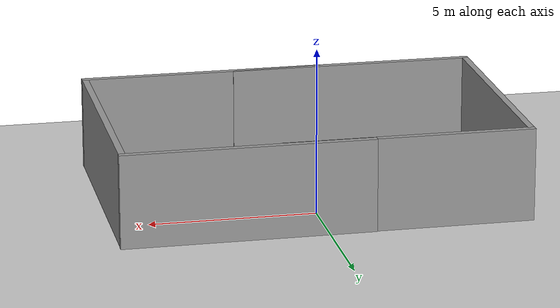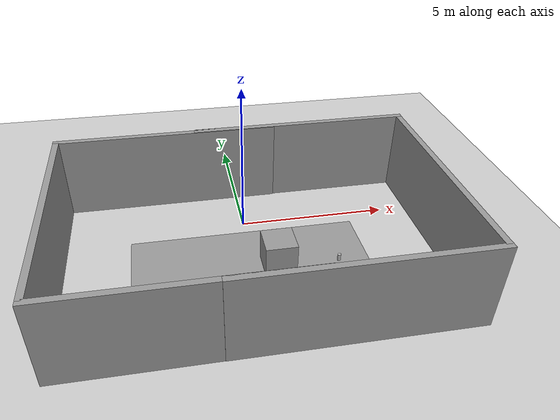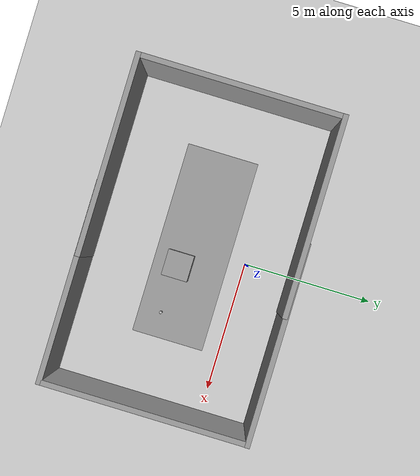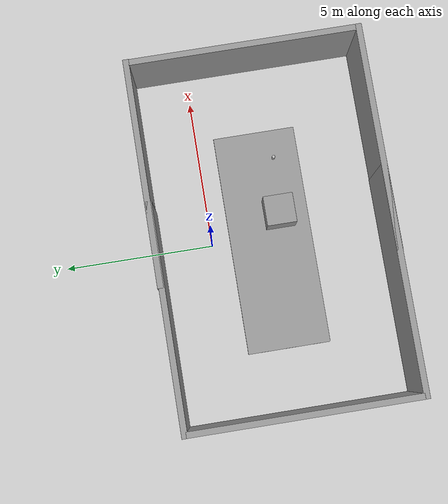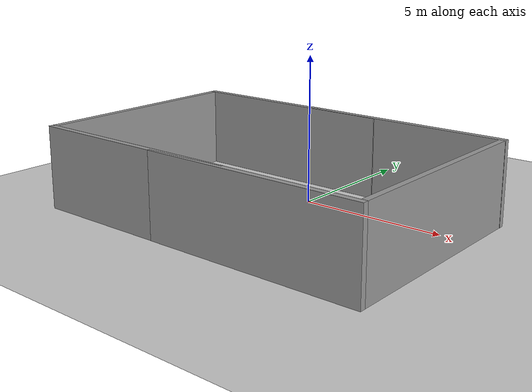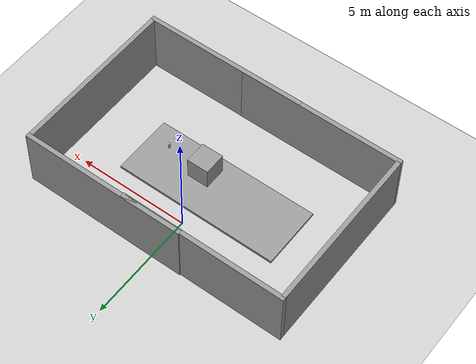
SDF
<sdf version="1.7">
 <world name="default">
  <light name="sun" type="directional">
   <pose>0 0 10 0 -0 0</pose>
   <diffuse>0.8 0.8 0.8 1</diffuse>
   <specular>0.2 0.2 0.2 1</specular>
   <attenuation>
    <range>1000</range>
    <constant>0.9</constant>
    <linear>0.01</linear>
    <quadratic>0.001</quadratic>
   </attenuation>
   <direction>-0.5 0.1 -0.9</direction>
   <spot><inner_angle>0</inner_angle><outer_angle>0</outer_angle><falloff>0</falloff></spot>
  </light>
  <model name="ground_plane">
   <static>1</static>
   <link name="link">
    <collision name="collision">
     <geometry><plane><normal>0 0 1</normal><size>100 100</size></plane></geometry>
     <surface><friction><ode><mu>100</mu><mu2>50</mu2></ode></friction></surface>
    </collision>
    <visual name="visual">
     <cast_shadows>0</cast_shadows>
     <geometry><plane><normal>0 0 1</normal><size>100 100</size></plane></geometry>
     <material>
      <script><uri>file://media/materials/scripts/gazebo.material</uri><name>Gazebo/Grey</name></script>
     </material>
    </visual>
   </link>
  </model>
  <gravity>0 0 -9.8</gravity>
  <magnetic_field>6e-06 2.3e-05 -4.2e-05</magnetic_field>
  <atmosphere type="adiabatic"/>
  <physics type="ode">
   <max_step_size>0.001</max_step_size>
   <real_time_factor>1</real_time_factor>
   <real_time_update_rate>1000</real_time_update_rate>
  </physics>
  <scene><ambient>0.4 0.4 0.4 1</ambient><background>0.7 0.7 0.7 1</background><shadows>1</shadows></scene>
  <spherical_coordinates>
   <surface_model>EARTH_WGS84</surface_model>
   <latitude_deg>0</latitude_deg>
   <longitude_deg>0</longitude_deg>
   <elevation>0</elevation>
   <heading_deg>0</heading_deg>
  </spherical_coordinates>
  <model name="grey_wall">
   <static>1</static>
   <link name="link">
    <pose>0 0 1.4 0 -0 0</pose>
    <collision name="collision"><geometry><box><size>7.5 0.2 2.8</size></box></geometry></collision>
    <visual name="visual">
     <cast_shadows>0</cast_shadows>
     <geometry><box><size>7.5 0.2 2.8</size></box></geometry>
     <material>
      <script>
       <uri>model://grey_wall/materials/scripts</uri>
       <uri>model://grey_wall/materials/textures</uri>
       <name>vrc/grey_wall</name>
      </script>
     </material>
    </visual>
   </link>
   <pose>-0.091714 -0.62023 5e-06 1.5708 -0 0</pose>
  </model>
  <model name="beer">
   <link name="link">
    <pose>0 0 0.115 0 -0 0</pose>
    <inertial>
     <mass>0.39</mass>
     <inertia><ixx>0.00058</ixx><ixy>0</ixy><ixz>0</ixz><iyy>0.00058</iyy><iyz>0</iyz><izz>0.00019</izz></inertia>
    </inertial>
    <collision name="collision">
     <geometry><cylinder><radius>0.055</radius><length>0.23</length></cylinder></geometry>
    </collision>
    <visual name="visual">
     <geometry><cylinder><radius>0.055</radius><length>0.23</length></cylinder></geometry>
     <material>
      <script>
       <uri>model://beer/materials/scripts</uri>
       <uri>model://beer/materials/textures</uri>
       <name>Beer/Diffuse</name>
      </script>
     </material>
    </visual>
   </link>
   <pose>2.68385 -2.56076 0.099999 9e-06 2.2e-05 -0.000943</pose>
  </model>
  <model name="unit_box">
   <pose>0.742353 -2.41636 0.59999 4e-06 -0 6e-06</pose>
   <link name="link">
    <inertial>
     <mass>1</mass>
     <inertia>
      <ixx>0.166667</ixx>
      <ixy>0</ixy>
      <ixz>0</ixz>
      <iyy>0.166667</iyy>
      <iyz>0</iyz>
      <izz>0.166667</izz>
     </inertia>
    </inertial>
    <collision name="collision"><geometry><box><size>1.00002 1 0.999983</size></box></geometry></collision>
    <visual name="visual">
     <geometry><box><size>1.00002 1 0.999983</size></box></geometry>
     <material>
      <script><name>Gazebo/Grey</name><uri>file://media/materials/scripts/gazebo.material</uri></script>
     </material>
    </visual>
   </link>
  </model>
  <model name="grey_wall_clone_clone">
   <static>1</static>
   <link name="link">
    <pose>0 0 1.4 0 -0 0</pose>
    <collision name="collision"><geometry><box><size>7.5 0.2 2.8</size></box></geometry></collision>
    <visual name="visual">
     <cast_shadows>0</cast_shadows>
     <geometry><box><size>7.5 0.2 2.8</size></box></geometry>
     <material>
      <script>
       <uri>model://grey_wall/materials/scripts</uri>
       <uri>model://grey_wall/materials/textures</uri>
       <name>vrc/grey_wall</name>
      </script>
     </material>
    </visual>
   </link>
   <pose>-2.35 -5.8 5e-06 0 -0 0</pose>
  </model>
  <model name="grey_wall_clone_clone_1">
   <static>1</static>
   <link name="link">
    <pose>0 0 1.4 0 -0 0</pose>
    <collision name="collision"><geometry><box><size>7.5 0.2 2.8</size></box></geometry></collision>
    <visual name="visual">
     <cast_shadows>0</cast_shadows>
     <geometry><box><size>7.5 0.2 2.8</size></box></geometry>
     <material>
      <script>
       <uri>model://grey_wall/materials/scripts</uri>
       <uri>model://grey_wall/materials/textures</uri>
       <name>vrc/grey_wall</name>
      </script>
     </material>
    </visual>
   </link>
   <pose>-2.35 1.8 5e-06 0 -0 0</pose>
  </model>
  <model name="grey_wall_clone_clone_2">
   <static>1</static>
   <link name="link">
    <pose>0 0 1.4 0 -0 0</pose>
    <collision name="collision"><geometry><box><size>7.5 0.2 2.8</size></box></geometry></collision>
    <visual name="visual">
     <cast_shadows>0</cast_shadows>
     <geometry><box><size>7.5 0.2 2.8</size></box></geometry>
     <material>
      <script>
       <uri>model://grey_wall/materials/scripts</uri>
       <uri>model://grey_wall/materials/textures</uri>
       <name>vrc/grey_wall</name>
      </script>
     </material>
    </visual>
   </link>
   <pose>-6 -2 5e-06 0 -0 1.57</pose>
  </model>
  <model name="grey_wall_clone_clone_2_clone">
   <static>1</static>
   <link name="link">
    <pose>0 0 1.4 0 -0 0</pose>
    <collision name="collision"><geometry><box><size>7.5 0.2 2.8</size></box></geometry></collision>
    <visual name="visual">
     <cast_shadows>0</cast_shadows>
     <geometry><box><size>7.5 0.2 2.8</size></box></geometry>
     <material>
      <script>
       <uri>model://grey_wall/materials/scripts</uri>
       <uri>model://grey_wall/materials/textures</uri>
       <name>vrc/grey_wall</name>
      </script>
     </material>
    </visual>
   </link>
   <pose>6 -2 5e-06 0 -0 1.57</pose>
  </model>
  <model name="grey_wall_clone_clone_1_clone">
   <static>1</static>
   <link name="link">
    <pose>0 0 1.4 0 -0 0</pose>
    <collision name="collision"><geometry><box><size>7.5 0.2 2.8</size></box></geometry></collision>
    <visual name="visual">
     <cast_shadows>0</cast_shadows>
     <geometry><box><size>7.5 0.2 2.8</size></box></geometry>
     <material>
      <script>
       <uri>model://grey_wall/materials/scripts</uri>
       <uri>model://grey_wall/materials/textures</uri>
       <name>vrc/grey_wall</name>
      </script>
     </material>
    </visual>
   </link>
   <pose>2.3623 1.83569 5e-06 0 -0 0</pose>
  </model>
  <model name="grey_wall_clone_clone_1_clone_0">
   <static>1</static>
   <link name="link">
    <pose>0 0 1.4 0 -0 0</pose>
    <collision name="collision"><geometry><box><size>7.5 0.2 2.8</size></box></geometry></collision>
    <visual name="visual">
     <cast_shadows>0</cast_shadows>
     <geometry><box><size>7.5 0.2 2.8</size></box></geometry>
     <material>
      <script>
       <uri>model://grey_wall/materials/scripts</uri>
       <uri>model://grey_wall/materials/textures</uri>
       <name>vrc/grey_wall</name>
      </script>
     </material>
    </visual>
   </link>
   <pose>2.34906 -5.80937 5e-06 0 -0 0</pose>
  </model>
 </world>
</sdf>
